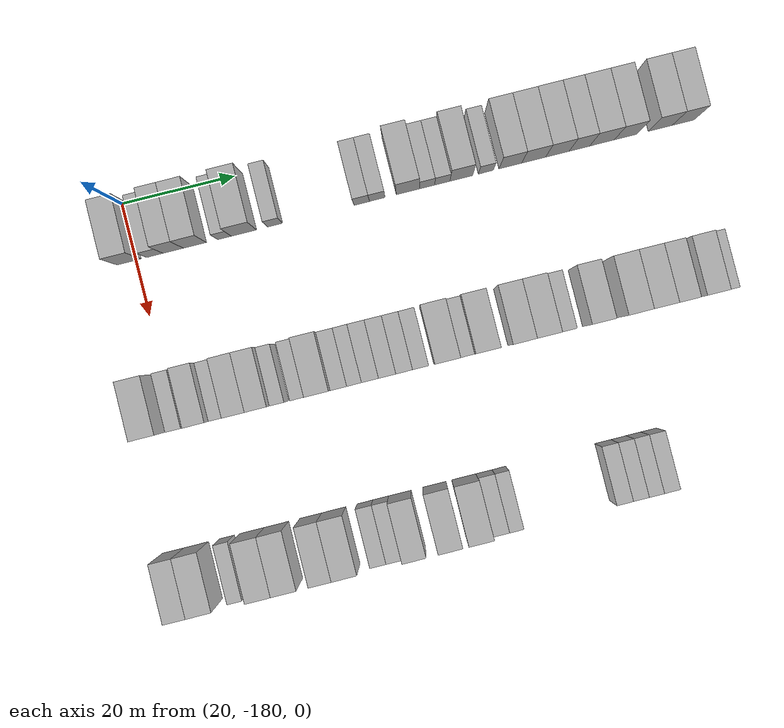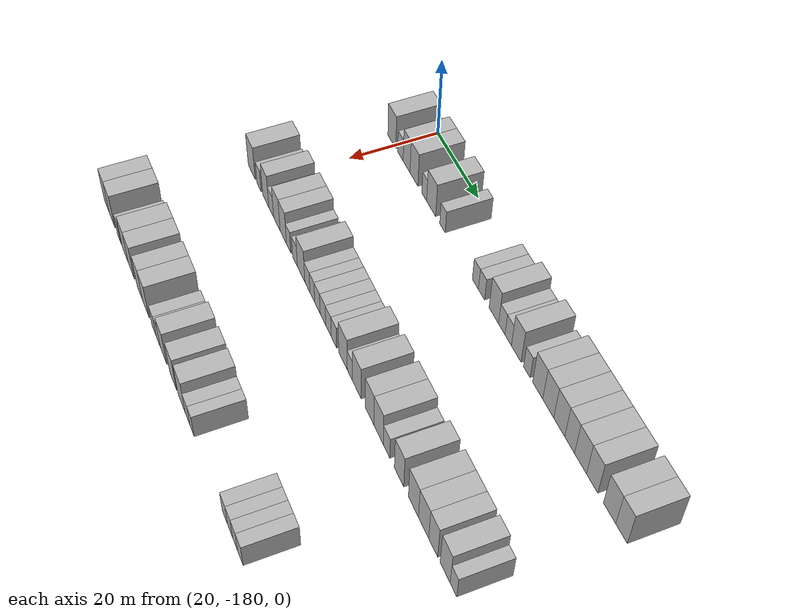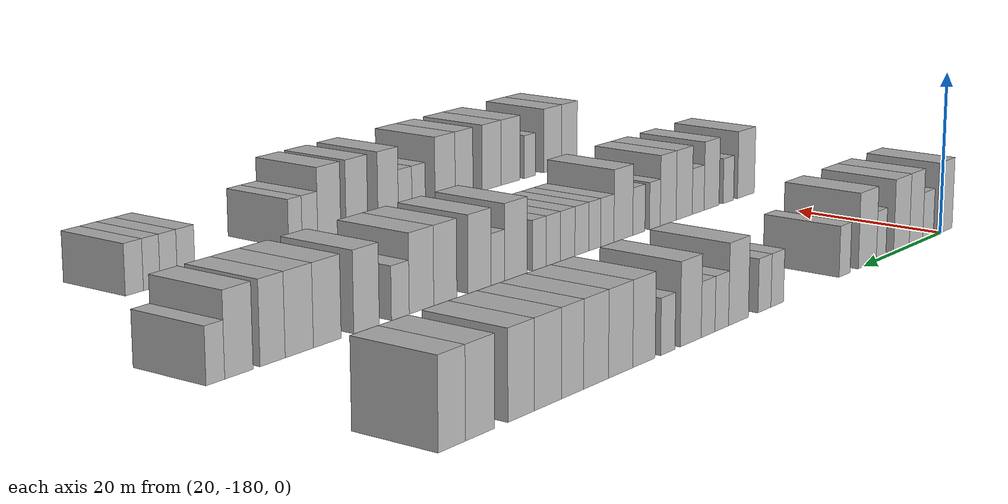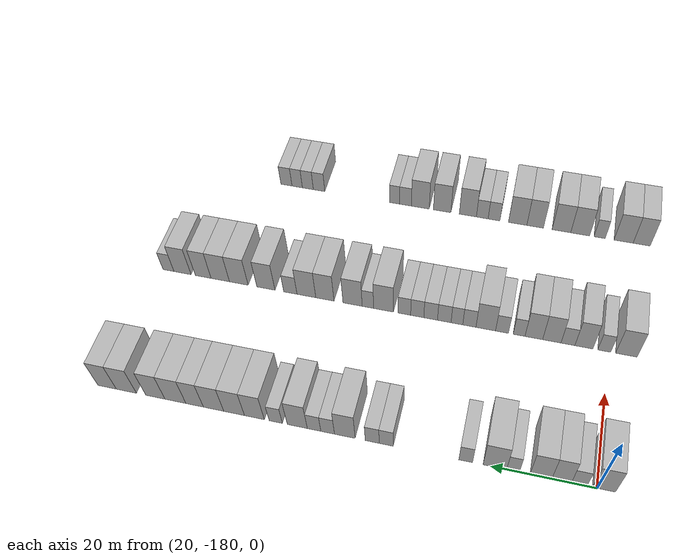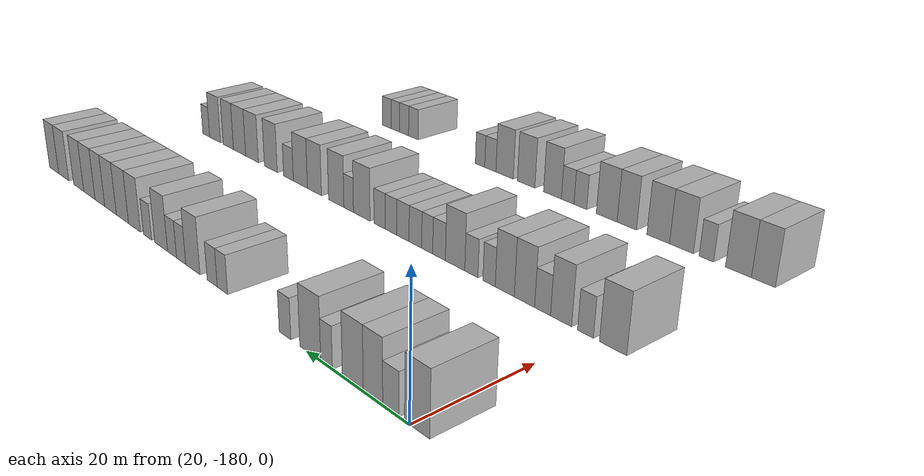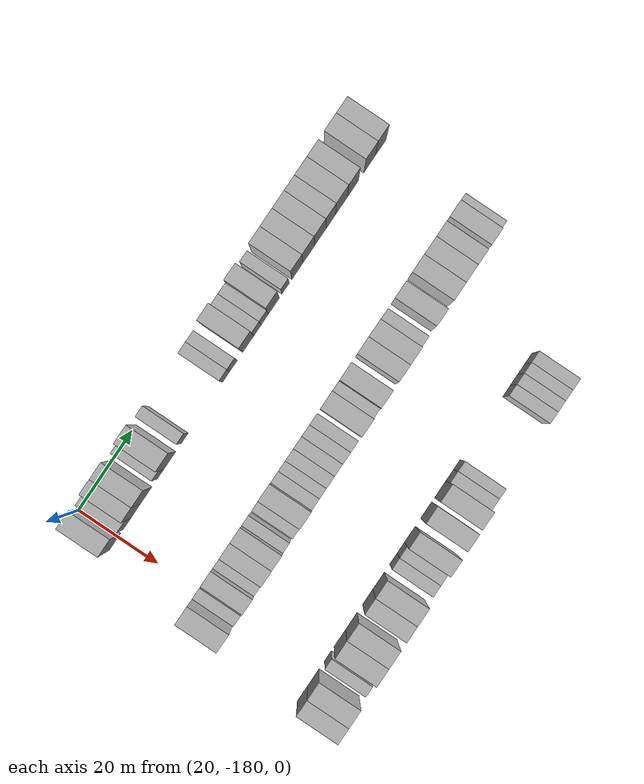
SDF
<sdf version="1.6">
 <world name="default">
  <model name="building_19">
   <static>1</static>
   <pose>25.0000 -181.2089 0 0.000000 0.000000 0.000000</pose>
   <link name="link">
    <pose>0 0 4.50 0 0 0</pose>
    <collision name="collision"><geometry><box><size>10.0000 4.2651 9.0000</size></box></geometry></collision>
    <visual name="visual">
     <cast_shadows>0</cast_shadows>
     <geometry><box><size>10.0000 4.2651 9.0000</size></box></geometry>
     <material>
      <script>
       <uri>model://HANNAS_wall/materials/scripts</uri>
       <uri>model://HANNAS_wall/materials/textures</uri>
       <name>vrc/HANNAS_wall</name>
      </script>
     </material>
    </visual>
   </link>
  </model>
  <model name="building_20">
   <static>1</static>
   <pose>25.0000 -176.6187 0 0.000000 0.000000 0.000000</pose>
   <link name="link">
    <pose>0 0 3.00 0 0 0</pose>
    <collision name="collision"><geometry><box><size>10.0000 2.9152 6.0000</size></box></geometry></collision>
    <visual name="visual">
     <cast_shadows>0</cast_shadows>
     <geometry><box><size>10.0000 2.9152 6.0000</size></box></geometry>
     <material>
      <script>
       <uri>model://HANNAS_wall/materials/scripts</uri>
       <uri>model://HANNAS_wall/materials/textures</uri>
       <name>vrc/HANNAS_wall</name>
      </script>
     </material>
    </visual>
   </link>
  </model>
  <model name="building_21">
   <static>1</static>
   <pose>25.0000 -173.3480 0 0.000000 0.000000 0.000000</pose>
   <link name="link">
    <pose>0 0 4.50 0 0 0</pose>
    <collision name="collision"><geometry><box><size>10.0000 3.6261 9.0000</size></box></geometry></collision>
    <visual name="visual">
     <cast_shadows>0</cast_shadows>
     <geometry><box><size>10.0000 3.6261 9.0000</size></box></geometry>
     <material>
      <script>
       <uri>model://HANNAS_wall/materials/scripts</uri>
       <uri>model://HANNAS_wall/materials/textures</uri>
       <name>vrc/HANNAS_wall</name>
      </script>
     </material>
    </visual>
   </link>
  </model>
  <model name="building_22">
   <static>1</static>
   <pose>25.0000 -169.4924 0 0.000000 0.000000 0.000000</pose>
   <link name="link">
    <pose>0 0 4.50 0 0 0</pose>
    <collision name="collision"><geometry><box><size>10.0000 4.0851 9.0000</size></box></geometry></collision>
    <visual name="visual">
     <cast_shadows>0</cast_shadows>
     <geometry><box><size>10.0000 4.0851 9.0000</size></box></geometry>
     <material>
      <script>
       <uri>model://HANNAS_wall/materials/scripts</uri>
       <uri>model://HANNAS_wall/materials/textures</uri>
       <name>vrc/HANNAS_wall</name>
      </script>
     </material>
    </visual>
   </link>
  </model>
  <model name="building_23">
   <static>1</static>
   <pose>25.0000 -164.2421 0 0.000000 0.000000 0.000000</pose>
   <link name="link">
    <pose>0 0 3.00 0 0 0</pose>
    <collision name="collision"><geometry><box><size>10.0000 2.4156 6.0000</size></box></geometry></collision>
    <visual name="visual">
     <cast_shadows>0</cast_shadows>
     <geometry><box><size>10.0000 2.4156 6.0000</size></box></geometry>
     <material>
      <script>
       <uri>model://HANNAS_wall/materials/scripts</uri>
       <uri>model://HANNAS_wall/materials/textures</uri>
       <name>vrc/HANNAS_wall</name>
      </script>
     </material>
    </visual>
   </link>
  </model>
  <model name="building_24">
   <static>1</static>
   <pose>25.0000 -160.7934 0 0.000000 0.000000 0.000000</pose>
   <link name="link">
    <pose>0 0 4.50 0 0 0</pose>
    <collision name="collision"><geometry><box><size>10.0000 4.4818 9.0000</size></box></geometry></collision>
    <visual name="visual">
     <cast_shadows>0</cast_shadows>
     <geometry><box><size>10.0000 4.4818 9.0000</size></box></geometry>
     <material>
      <script>
       <uri>model://HANNAS_wall/materials/scripts</uri>
       <uri>model://HANNAS_wall/materials/textures</uri>
       <name>vrc/HANNAS_wall</name>
      </script>
     </material>
    </visual>
   </link>
  </model>
  <model name="building_25">
   <static>1</static>
   <pose>25.0000 -155.2299 0 0.000000 0.000000 0.000000</pose>
   <link name="link">
    <pose>0 0 3.00 0 0 0</pose>
    <collision name="collision"><geometry><box><size>10.0000 2.6451 6.0000</size></box></geometry></collision>
    <visual name="visual">
     <cast_shadows>0</cast_shadows>
     <geometry><box><size>10.0000 2.6451 6.0000</size></box></geometry>
     <material>
      <script>
       <uri>model://HANNAS_wall/materials/scripts</uri>
       <uri>model://HANNAS_wall/materials/textures</uri>
       <name>vrc/HANNAS_wall</name>
      </script>
     </material>
    </visual>
   </link>
  </model>
  <model name="building_26">
   <static>1</static>
   <pose>25.0000 -139.7880 0 0.000000 0.000000 0.000000</pose>
   <link name="link">
    <pose>0 0 3.00 0 0 0</pose>
    <collision name="collision"><geometry><box><size>10.0000 2.7462 6.0000</size></box></geometry></collision>
    <visual name="visual">
     <cast_shadows>0</cast_shadows>
     <geometry><box><size>10.0000 2.7462 6.0000</size></box></geometry>
     <material>
      <script>
       <uri>model://HANNAS_wall/materials/scripts</uri>
       <uri>model://HANNAS_wall/materials/textures</uri>
       <name>vrc/HANNAS_wall</name>
      </script>
     </material>
    </visual>
   </link>
  </model>
  <model name="building_27">
   <static>1</static>
   <pose>25.0000 -137.0259 0 0.000000 0.000000 0.000000</pose>
   <link name="link">
    <pose>0 0 3.00 0 0 0</pose>
    <collision name="collision"><geometry><box><size>10.0000 2.7780 6.0000</size></box></geometry></collision>
    <visual name="visual">
     <cast_shadows>0</cast_shadows>
     <geometry><box><size>10.0000 2.7780 6.0000</size></box></geometry>
     <material>
      <script>
       <uri>model://HANNAS_wall/materials/scripts</uri>
       <uri>model://HANNAS_wall/materials/textures</uri>
       <name>vrc/HANNAS_wall</name>
      </script>
     </material>
    </visual>
   </link>
  </model>
  <model name="building_28">
   <static>1</static>
   <pose>25.0000 -131.5813 0 0.000000 0.000000 0.000000</pose>
   <link name="link">
    <pose>0 0 4.50 0 0 0</pose>
    <collision name="collision"><geometry><box><size>10.0000 4.1113 9.0000</size></box></geometry></collision>
    <visual name="visual">
     <cast_shadows>0</cast_shadows>
     <geometry><box><size>10.0000 4.1113 9.0000</size></box></geometry>
     <material>
      <script>
       <uri>model://HANNAS_wall/materials/scripts</uri>
       <uri>model://HANNAS_wall/materials/textures</uri>
       <name>vrc/HANNAS_wall</name>
      </script>
     </material>
    </visual>
   </link>
  </model>
  <model name="building_29">
   <static>1</static>
   <pose>25.0000 -128.1571 0 0.000000 0.000000 0.000000</pose>
   <link name="link">
    <pose>0 0 3.00 0 0 0</pose>
    <collision name="collision"><geometry><box><size>10.0000 2.7370 6.0000</size></box></geometry></collision>
    <visual name="visual">
     <cast_shadows>0</cast_shadows>
     <geometry><box><size>10.0000 2.7370 6.0000</size></box></geometry>
     <material>
      <script>
       <uri>model://HANNAS_wall/materials/scripts</uri>
       <uri>model://HANNAS_wall/materials/textures</uri>
       <name>vrc/HANNAS_wall</name>
      </script>
     </material>
    </visual>
   </link>
  </model>
  <model name="building_30">
   <static>1</static>
   <pose>25.0000 -125.4257 0 0.000000 0.000000 0.000000</pose>
   <link name="link">
    <pose>0 0 3.00 0 0 0</pose>
    <collision name="collision"><geometry><box><size>10.0000 2.7259 6.0000</size></box></geometry></collision>
    <visual name="visual">
     <cast_shadows>0</cast_shadows>
     <geometry><box><size>10.0000 2.7259 6.0000</size></box></geometry>
     <material>
      <script>
       <uri>model://HANNAS_wall/materials/scripts</uri>
       <uri>model://HANNAS_wall/materials/textures</uri>
       <name>vrc/HANNAS_wall</name>
      </script>
     </material>
    </visual>
   </link>
  </model>
  <model name="building_31">
   <static>1</static>
   <pose>25.0000 -122.0370 0 0.000000 0.000000 0.000000</pose>
   <link name="link">
    <pose>0 0 4.50 0 0 0</pose>
    <collision name="collision"><geometry><box><size>10.0000 4.0514 9.0000</size></box></geometry></collision>
    <visual name="visual">
     <cast_shadows>0</cast_shadows>
     <geometry><box><size>10.0000 4.0514 9.0000</size></box></geometry>
     <material>
      <script>
       <uri>model://HANNAS_wall/materials/scripts</uri>
       <uri>model://HANNAS_wall/materials/textures</uri>
       <name>vrc/HANNAS_wall</name>
      </script>
     </material>
    </visual>
   </link>
  </model>
  <model name="building_32">
   <static>1</static>
   <pose>25.0000 -117.6676 0 0.000000 0.000000 0.000000</pose>
   <link name="link">
    <pose>0 0 3.00 0 0 0</pose>
    <collision name="collision"><geometry><box><size>10.0000 2.6874 6.0000</size></box></geometry></collision>
    <visual name="visual">
     <cast_shadows>0</cast_shadows>
     <geometry><box><size>10.0000 2.6874 6.0000</size></box></geometry>
     <material>
      <script>
       <uri>model://HANNAS_wall/materials/scripts</uri>
       <uri>model://HANNAS_wall/materials/textures</uri>
       <name>vrc/HANNAS_wall</name>
      </script>
     </material>
    </visual>
   </link>
  </model>
  <model name="building_33">
   <static>1</static>
   <pose>25.0000 -113.2914 0 0.000000 0.000000 0.000000</pose>
   <link name="link">
    <pose>0 0 4.50 0 0 0</pose>
    <collision name="collision"><geometry><box><size>10.0000 4.0650 9.0000</size></box></geometry></collision>
    <visual name="visual">
     <cast_shadows>0</cast_shadows>
     <geometry><box><size>10.0000 4.0650 9.0000</size></box></geometry>
     <material>
      <script>
       <uri>model://HANNAS_wall/materials/scripts</uri>
       <uri>model://HANNAS_wall/materials/textures</uri>
       <name>vrc/HANNAS_wall</name>
      </script>
     </material>
    </visual>
   </link>
  </model>
  <model name="building_34">
   <static>1</static>
   <pose>25.0000 -109.1173 0 0.000000 0.000000 0.000000</pose>
   <link name="link">
    <pose>0 0 4.50 0 0 0</pose>
    <collision name="collision"><geometry><box><size>10.0000 4.2831 9.0000</size></box></geometry></collision>
    <visual name="visual">
     <cast_shadows>0</cast_shadows>
     <geometry><box><size>10.0000 4.2831 9.0000</size></box></geometry>
     <material>
      <script>
       <uri>model://HANNAS_wall/materials/scripts</uri>
       <uri>model://HANNAS_wall/materials/textures</uri>
       <name>vrc/HANNAS_wall</name>
      </script>
     </material>
    </visual>
   </link>
  </model>
  <model name="building_35">
   <static>1</static>
   <pose>25.0000 -104.8553 0 0.000000 0.000000 0.000000</pose>
   <link name="link">
    <pose>0 0 4.50 0 0 0</pose>
    <collision name="collision"><geometry><box><size>10.0000 4.2411 9.0000</size></box></geometry></collision>
    <visual name="visual">
     <cast_shadows>0</cast_shadows>
     <geometry><box><size>10.0000 4.2411 9.0000</size></box></geometry>
     <material>
      <script>
       <uri>model://HANNAS_wall/materials/scripts</uri>
       <uri>model://HANNAS_wall/materials/textures</uri>
       <name>vrc/HANNAS_wall</name>
      </script>
     </material>
    </visual>
   </link>
  </model>
  <model name="building_36">
   <static>1</static>
   <pose>25.0000 -100.9008 0 0.000000 0.000000 0.000000</pose>
   <link name="link">
    <pose>0 0 4.50 0 0 0</pose>
    <collision name="collision"><geometry><box><size>10.0000 3.6677 9.0000</size></box></geometry></collision>
    <visual name="visual">
     <cast_shadows>0</cast_shadows>
     <geometry><box><size>10.0000 3.6677 9.0000</size></box></geometry>
     <material>
      <script>
       <uri>model://HANNAS_wall/materials/scripts</uri>
       <uri>model://HANNAS_wall/materials/textures</uri>
       <name>vrc/HANNAS_wall</name>
      </script>
     </material>
    </visual>
   </link>
  </model>
  <model name="building_37">
   <static>1</static>
   <pose>25.0000 -96.8652 0 0.000000 0.000000 0.000000</pose>
   <link name="link">
    <pose>0 0 4.50 0 0 0</pose>
    <collision name="collision"><geometry><box><size>10.0000 4.4035 9.0000</size></box></geometry></collision>
    <visual name="visual">
     <cast_shadows>0</cast_shadows>
     <geometry><box><size>10.0000 4.4035 9.0000</size></box></geometry>
     <material>
      <script>
       <uri>model://HANNAS_wall/materials/scripts</uri>
       <uri>model://HANNAS_wall/materials/textures</uri>
       <name>vrc/HANNAS_wall</name>
      </script>
     </material>
    </visual>
   </link>
  </model>
  <model name="building_38">
   <static>1</static>
   <pose>25.0000 -92.6300 0 0.000000 0.000000 0.000000</pose>
   <link name="link">
    <pose>0 0 4.50 0 0 0</pose>
    <collision name="collision"><geometry><box><size>10.0000 4.0669 9.0000</size></box></geometry></collision>
    <visual name="visual">
     <cast_shadows>0</cast_shadows>
     <geometry><box><size>10.0000 4.0669 9.0000</size></box></geometry>
     <material>
      <script>
       <uri>model://HANNAS_wall/materials/scripts</uri>
       <uri>model://HANNAS_wall/materials/textures</uri>
       <name>vrc/HANNAS_wall</name>
      </script>
     </material>
    </visual>
   </link>
  </model>
  <model name="building_39">
   <static>1</static>
   <pose>25.0000 -86.4419 0 0.000000 0.000000 0.000000</pose>
   <link name="link">
    <pose>0 0 4.50 0 0 0</pose>
    <collision name="collision"><geometry><box><size>10.0000 4.3093 9.0000</size></box></geometry></collision>
    <visual name="visual">
     <cast_shadows>0</cast_shadows>
     <geometry><box><size>10.0000 4.3093 9.0000</size></box></geometry>
     <material>
      <script>
       <uri>model://HANNAS_wall/materials/scripts</uri>
       <uri>model://HANNAS_wall/materials/textures</uri>
       <name>vrc/HANNAS_wall</name>
      </script>
     </material>
    </visual>
   </link>
  </model>
  <model name="building_40">
   <static>1</static>
   <pose>25.0000 -82.3162 0 0.000000 0.000000 0.000000</pose>
   <link name="link">
    <pose>0 0 4.50 0 0 0</pose>
    <collision name="collision"><geometry><box><size>10.0000 3.9421 9.0000</size></box></geometry></collision>
    <visual name="visual">
     <cast_shadows>0</cast_shadows>
     <geometry><box><size>10.0000 3.9421 9.0000</size></box></geometry>
     <material>
      <script>
       <uri>model://HANNAS_wall/materials/scripts</uri>
       <uri>model://HANNAS_wall/materials/textures</uri>
       <name>vrc/HANNAS_wall</name>
      </script>
     </material>
    </visual>
   </link>
  </model>
  <model name="building_151">
   <static>1</static>
   <pose>55.0000 -183.7176 0 0.000000 0.000000 0.000000</pose>
   <link name="link">
    <pose>0 0 4.50 0 0 0</pose>
    <collision name="collision"><geometry><box><size>10.0000 4.3691 9.0000</size></box></geometry></collision>
    <visual name="visual">
     <cast_shadows>0</cast_shadows>
     <geometry><box><size>10.0000 4.3691 9.0000</size></box></geometry>
     <material>
      <script>
       <uri>model://HANNAS_wall/materials/scripts</uri>
       <uri>model://HANNAS_wall/materials/textures</uri>
       <name>vrc/HANNAS_wall</name>
      </script>
     </material>
    </visual>
   </link>
  </model>
  <model name="building_152">
   <static>1</static>
   <pose>55.0000 -179.2013 0 0.000000 0.000000 0.000000</pose>
   <link name="link">
    <pose>0 0 3.00 0 0 0</pose>
    <collision name="collision"><geometry><box><size>10.0000 2.6634 6.0000</size></box></geometry></collision>
    <visual name="visual">
     <cast_shadows>0</cast_shadows>
     <geometry><box><size>10.0000 2.6634 6.0000</size></box></geometry>
     <material>
      <script>
       <uri>model://HANNAS_wall/materials/scripts</uri>
       <uri>model://HANNAS_wall/materials/textures</uri>
       <name>vrc/HANNAS_wall</name>
      </script>
     </material>
    </visual>
   </link>
  </model>
  <model name="building_153">
   <static>1</static>
   <pose>55.0000 -175.0153 0 0.000000 0.000000 0.000000</pose>
   <link name="link">
    <pose>0 0 4.50 0 0 0</pose>
    <collision name="collision"><geometry><box><size>10.0000 3.7085 9.0000</size></box></geometry></collision>
    <visual name="visual">
     <cast_shadows>0</cast_shadows>
     <geometry><box><size>10.0000 3.7085 9.0000</size></box></geometry>
     <material>
      <script>
       <uri>model://HANNAS_wall/materials/scripts</uri>
       <uri>model://HANNAS_wall/materials/textures</uri>
       <name>vrc/HANNAS_wall</name>
      </script>
     </material>
    </visual>
   </link>
  </model>
  <model name="building_154">
   <static>1</static>
   <pose>55.0000 -171.7183 0 0.000000 0.000000 0.000000</pose>
   <link name="link">
    <pose>0 0 3.00 0 0 0</pose>
    <collision name="collision"><geometry><box><size>10.0000 2.8856 6.0000</size></box></geometry></collision>
    <visual name="visual">
     <cast_shadows>0</cast_shadows>
     <geometry><box><size>10.0000 2.8856 6.0000</size></box></geometry>
     <material>
      <script>
       <uri>model://HANNAS_wall/materials/scripts</uri>
       <uri>model://HANNAS_wall/materials/textures</uri>
       <name>vrc/HANNAS_wall</name>
      </script>
     </material>
    </visual>
   </link>
  </model>
  <model name="building_155">
   <static>1</static>
   <pose>55.0000 -168.3627 0 0.000000 0.000000 0.000000</pose>
   <link name="link">
    <pose>0 0 4.50 0 0 0</pose>
    <collision name="collision"><geometry><box><size>10.0000 3.8256 9.0000</size></box></geometry></collision>
    <visual name="visual">
     <cast_shadows>0</cast_shadows>
     <geometry><box><size>10.0000 3.8256 9.0000</size></box></geometry>
     <material>
      <script>
       <uri>model://HANNAS_wall/materials/scripts</uri>
       <uri>model://HANNAS_wall/materials/textures</uri>
       <name>vrc/HANNAS_wall</name>
      </script>
     </material>
    </visual>
   </link>
  </model>
  <model name="building_156">
   <static>1</static>
   <pose>55.0000 -164.5997 0 0.000000 0.000000 0.000000</pose>
   <link name="link">
    <pose>0 0 4.50 0 0 0</pose>
    <collision name="collision"><geometry><box><size>10.0000 3.7004 9.0000</size></box></geometry></collision>
    <visual name="visual">
     <cast_shadows>0</cast_shadows>
     <geometry><box><size>10.0000 3.7004 9.0000</size></box></geometry>
     <material>
      <script>
       <uri>model://HANNAS_wall/materials/scripts</uri>
       <uri>model://HANNAS_wall/materials/textures</uri>
       <name>vrc/HANNAS_wall</name>
      </script>
     </material>
    </visual>
   </link>
  </model>
  <model name="building_157">
   <static>1</static>
   <pose>55.0000 -161.5065 0 0.000000 0.000000 0.000000</pose>
   <link name="link">
    <pose>0 0 3.00 0 0 0</pose>
    <collision name="collision"><geometry><box><size>10.0000 2.4860 6.0000</size></box></geometry></collision>
    <visual name="visual">
     <cast_shadows>0</cast_shadows>
     <geometry><box><size>10.0000 2.4860 6.0000</size></box></geometry>
     <material>
      <script>
       <uri>model://HANNAS_wall/materials/scripts</uri>
       <uri>model://HANNAS_wall/materials/textures</uri>
       <name>vrc/HANNAS_wall</name>
      </script>
     </material>
    </visual>
   </link>
  </model>
  <model name="building_158">
   <static>1</static>
   <pose>55.0000 -157.8949 0 0.000000 0.000000 0.000000</pose>
   <link name="link">
    <pose>0 0 3.00 0 0 0</pose>
    <collision name="collision"><geometry><box><size>10.0000 2.7372 6.0000</size></box></geometry></collision>
    <visual name="visual">
     <cast_shadows>0</cast_shadows>
     <geometry><box><size>10.0000 2.7372 6.0000</size></box></geometry>
     <material>
      <script>
       <uri>model://HANNAS_wall/materials/scripts</uri>
       <uri>model://HANNAS_wall/materials/textures</uri>
       <name>vrc/HANNAS_wall</name>
      </script>
     </material>
    </visual>
   </link>
  </model>
  <model name="building_159">
   <static>1</static>
   <pose>55.0000 -154.4484 0 0.000000 0.000000 0.000000</pose>
   <link name="link">
    <pose>0 0 4.50 0 0 0</pose>
    <collision name="collision"><geometry><box><size>10.0000 4.1558 9.0000</size></box></geometry></collision>
    <visual name="visual">
     <cast_shadows>0</cast_shadows>
     <geometry><box><size>10.0000 4.1558 9.0000</size></box></geometry>
     <material>
      <script>
       <uri>model://HANNAS_wall/materials/scripts</uri>
       <uri>model://HANNAS_wall/materials/textures</uri>
       <name>vrc/HANNAS_wall</name>
      </script>
     </material>
    </visual>
   </link>
  </model>
  <model name="building_160">
   <static>1</static>
   <pose>55.0000 -150.9578 0 0.000000 0.000000 0.000000</pose>
   <link name="link">
    <pose>0 0 3.00 0 0 0</pose>
    <collision name="collision"><geometry><box><size>10.0000 2.8255 6.0000</size></box></geometry></collision>
    <visual name="visual">
     <cast_shadows>0</cast_shadows>
     <geometry><box><size>10.0000 2.8255 6.0000</size></box></geometry>
     <material>
      <script>
       <uri>model://HANNAS_wall/materials/scripts</uri>
       <uri>model://HANNAS_wall/materials/textures</uri>
       <name>vrc/HANNAS_wall</name>
      </script>
     </material>
    </visual>
   </link>
  </model>
  <model name="building_161">
   <static>1</static>
   <pose>55.0000 -148.2878 0 0.000000 0.000000 0.000000</pose>
   <link name="link">
    <pose>0 0 3.00 0 0 0</pose>
    <collision name="collision"><geometry><box><size>10.0000 2.5145 6.0000</size></box></geometry></collision>
    <visual name="visual">
     <cast_shadows>0</cast_shadows>
     <geometry><box><size>10.0000 2.5145 6.0000</size></box></geometry>
     <material>
      <script>
       <uri>model://HANNAS_wall/materials/scripts</uri>
       <uri>model://HANNAS_wall/materials/textures</uri>
       <name>vrc/HANNAS_wall</name>
      </script>
     </material>
    </visual>
   </link>
  </model>
  <model name="building_162">
   <static>1</static>
   <pose>55.0000 -145.5676 0 0.000000 0.000000 0.000000</pose>
   <link name="link">
    <pose>0 0 3.00 0 0 0</pose>
    <collision name="collision"><geometry><box><size>10.0000 2.9258 6.0000</size></box></geometry></collision>
    <visual name="visual">
     <cast_shadows>0</cast_shadows>
     <geometry><box><size>10.0000 2.9258 6.0000</size></box></geometry>
     <material>
      <script>
       <uri>model://HANNAS_wall/materials/scripts</uri>
       <uri>model://HANNAS_wall/materials/textures</uri>
       <name>vrc/HANNAS_wall</name>
      </script>
     </material>
    </visual>
   </link>
  </model>
  <model name="building_163">
   <static>1</static>
   <pose>55.0000 -142.6265 0 0.000000 0.000000 0.000000</pose>
   <link name="link">
    <pose>0 0 3.00 0 0 0</pose>
    <collision name="collision"><geometry><box><size>10.0000 2.9563 6.0000</size></box></geometry></collision>
    <visual name="visual">
     <cast_shadows>0</cast_shadows>
     <geometry><box><size>10.0000 2.9563 6.0000</size></box></geometry>
     <material>
      <script>
       <uri>model://HANNAS_wall/materials/scripts</uri>
       <uri>model://HANNAS_wall/materials/textures</uri>
       <name>vrc/HANNAS_wall</name>
      </script>
     </material>
    </visual>
   </link>
  </model>
  <model name="building_164">
   <static>1</static>
   <pose>55.0000 -139.7189 0 0.000000 0.000000 0.000000</pose>
   <link name="link">
    <pose>0 0 3.00 0 0 0</pose>
    <collision name="collision"><geometry><box><size>10.0000 2.8590 6.0000</size></box></geometry></collision>
    <visual name="visual">
     <cast_shadows>0</cast_shadows>
     <geometry><box><size>10.0000 2.8590 6.0000</size></box></geometry>
     <material>
      <script>
       <uri>model://HANNAS_wall/materials/scripts</uri>
       <uri>model://HANNAS_wall/materials/textures</uri>
       <name>vrc/HANNAS_wall</name>
      </script>
     </material>
    </visual>
   </link>
  </model>
  <model name="building_165">
   <static>1</static>
   <pose>55.0000 -136.9082 0 0.000000 0.000000 0.000000</pose>
   <link name="link">
    <pose>0 0 3.00 0 0 0</pose>
    <collision name="collision"><geometry><box><size>10.0000 2.7624 6.0000</size></box></geometry></collision>
    <visual name="visual">
     <cast_shadows>0</cast_shadows>
     <geometry><box><size>10.0000 2.7624 6.0000</size></box></geometry>
     <material>
      <script>
       <uri>model://HANNAS_wall/materials/scripts</uri>
       <uri>model://HANNAS_wall/materials/textures</uri>
       <name>vrc/HANNAS_wall</name>
      </script>
     </material>
    </visual>
   </link>
  </model>
  <model name="building_166">
   <static>1</static>
   <pose>55.0000 -132.3588 0 0.000000 0.000000 0.000000</pose>
   <link name="link">
    <pose>0 0 4.50 0 0 0</pose>
    <collision name="collision"><geometry><box><size>10.0000 4.3364 9.0000</size></box></geometry></collision>
    <visual name="visual">
     <cast_shadows>0</cast_shadows>
     <geometry><box><size>10.0000 4.3364 9.0000</size></box></geometry>
     <material>
      <script>
       <uri>model://HANNAS_wall/materials/scripts</uri>
       <uri>model://HANNAS_wall/materials/textures</uri>
       <name>vrc/HANNAS_wall</name>
      </script>
     </material>
    </visual>
   </link>
  </model>
  <model name="building_167">
   <static>1</static>
   <pose>55.0000 -128.9199 0 0.000000 0.000000 0.000000</pose>
   <link name="link">
    <pose>0 0 3.00 0 0 0</pose>
    <collision name="collision"><geometry><box><size>10.0000 2.5414 6.0000</size></box></geometry></collision>
    <visual name="visual">
     <cast_shadows>0</cast_shadows>
     <geometry><box><size>10.0000 2.5414 6.0000</size></box></geometry>
     <material>
      <script>
       <uri>model://HANNAS_wall/materials/scripts</uri>
       <uri>model://HANNAS_wall/materials/textures</uri>
       <name>vrc/HANNAS_wall</name>
      </script>
     </material>
    </visual>
   </link>
  </model>
  <model name="building_168">
   <static>1</static>
   <pose>55.0000 -125.5203 0 0.000000 0.000000 0.000000</pose>
   <link name="link">
    <pose>0 0 4.50 0 0 0</pose>
    <collision name="collision"><geometry><box><size>10.0000 4.2578 9.0000</size></box></geometry></collision>
    <visual name="visual">
     <cast_shadows>0</cast_shadows>
     <geometry><box><size>10.0000 4.2578 9.0000</size></box></geometry>
     <material>
      <script>
       <uri>model://HANNAS_wall/materials/scripts</uri>
       <uri>model://HANNAS_wall/materials/textures</uri>
       <name>vrc/HANNAS_wall</name>
      </script>
     </material>
    </visual>
   </link>
  </model>
  <model name="building_169">
   <static>1</static>
   <pose>55.0000 -119.3529 0 0.000000 0.000000 0.000000</pose>
   <link name="link">
    <pose>0 0 4.50 0 0 0</pose>
    <collision name="collision"><geometry><box><size>10.0000 4.0770 9.0000</size></box></geometry></collision>
    <visual name="visual">
     <cast_shadows>0</cast_shadows>
     <geometry><box><size>10.0000 4.0770 9.0000</size></box></geometry>
     <material>
      <script>
       <uri>model://HANNAS_wall/materials/scripts</uri>
       <uri>model://HANNAS_wall/materials/textures</uri>
       <name>vrc/HANNAS_wall</name>
      </script>
     </material>
    </visual>
   </link>
  </model>
  <model name="building_170">
   <static>1</static>
   <pose>55.0000 -115.2009 0 0.000000 0.000000 0.000000</pose>
   <link name="link">
    <pose>0 0 4.50 0 0 0</pose>
    <collision name="collision"><geometry><box><size>10.0000 4.2271 9.0000</size></box></geometry></collision>
    <visual name="visual">
     <cast_shadows>0</cast_shadows>
     <geometry><box><size>10.0000 4.2271 9.0000</size></box></geometry>
     <material>
      <script>
       <uri>model://HANNAS_wall/materials/scripts</uri>
       <uri>model://HANNAS_wall/materials/textures</uri>
       <name>vrc/HANNAS_wall</name>
      </script>
     </material>
    </visual>
   </link>
  </model>
  <model name="building_171">
   <static>1</static>
   <pose>55.0000 -111.5889 0 0.000000 0.000000 0.000000</pose>
   <link name="link">
    <pose>0 0 3.00 0 0 0</pose>
    <collision name="collision"><geometry><box><size>10.0000 2.9969 6.0000</size></box></geometry></collision>
    <visual name="visual">
     <cast_shadows>0</cast_shadows>
     <geometry><box><size>10.0000 2.9969 6.0000</size></box></geometry>
     <material>
      <script>
       <uri>model://HANNAS_wall/materials/scripts</uri>
       <uri>model://HANNAS_wall/materials/textures</uri>
       <name>vrc/HANNAS_wall</name>
      </script>
     </material>
    </visual>
   </link>
  </model>
  <model name="building_172">
   <static>1</static>
   <pose>55.0000 -106.0221 0 0.000000 0.000000 0.000000</pose>
   <link name="link">
    <pose>0 0 4.50 0 0 0</pose>
    <collision name="collision"><geometry><box><size>10.0000 4.1366 9.0000</size></box></geometry></collision>
    <visual name="visual">
     <cast_shadows>0</cast_shadows>
     <geometry><box><size>10.0000 4.1366 9.0000</size></box></geometry>
     <material>
      <script>
       <uri>model://HANNAS_wall/materials/scripts</uri>
       <uri>model://HANNAS_wall/materials/textures</uri>
       <name>vrc/HANNAS_wall</name>
      </script>
     </material>
    </visual>
   </link>
  </model>
  <model name="building_173">
   <static>1</static>
   <pose>55.0000 -99.8083 0 0.000000 0.000000 0.000000</pose>
   <link name="link">
    <pose>0 0 4.50 0 0 0</pose>
    <collision name="collision"><geometry><box><size>10.0000 4.2912 9.0000</size></box></geometry></collision>
    <visual name="visual">
     <cast_shadows>0</cast_shadows>
     <geometry><box><size>10.0000 4.2912 9.0000</size></box></geometry>
     <material>
      <script>
       <uri>model://HANNAS_wall/materials/scripts</uri>
       <uri>model://HANNAS_wall/materials/textures</uri>
       <name>vrc/HANNAS_wall</name>
      </script>
     </material>
    </visual>
   </link>
  </model>
  <model name="building_174">
   <static>1</static>
   <pose>55.0000 -95.5378 0 0.000000 0.000000 0.000000</pose>
   <link name="link">
    <pose>0 0 4.50 0 0 0</pose>
    <collision name="collision"><geometry><box><size>10.0000 4.2497 9.0000</size></box></geometry></collision>
    <visual name="visual">
     <cast_shadows>0</cast_shadows>
     <geometry><box><size>10.0000 4.2497 9.0000</size></box></geometry>
     <material>
      <script>
       <uri>model://HANNAS_wall/materials/scripts</uri>
       <uri>model://HANNAS_wall/materials/textures</uri>
       <name>vrc/HANNAS_wall</name>
      </script>
     </material>
    </visual>
   </link>
  </model>
  <model name="building_175">
   <static>1</static>
   <pose>55.0000 -91.5769 0 0.000000 0.000000 0.000000</pose>
   <link name="link">
    <pose>0 0 4.50 0 0 0</pose>
    <collision name="collision"><geometry><box><size>10.0000 3.6722 9.0000</size></box></geometry></collision>
    <visual name="visual">
     <cast_shadows>0</cast_shadows>
     <geometry><box><size>10.0000 3.6722 9.0000</size></box></geometry>
     <material>
      <script>
       <uri>model://HANNAS_wall/materials/scripts</uri>
       <uri>model://HANNAS_wall/materials/textures</uri>
       <name>vrc/HANNAS_wall</name>
      </script>
     </material>
    </visual>
   </link>
  </model>
  <model name="building_176">
   <static>1</static>
   <pose>55.0000 -86.7364 0 0.000000 0.000000 0.000000</pose>
   <link name="link">
    <pose>0 0 4.50 0 0 0</pose>
    <collision name="collision"><geometry><box><size>10.0000 4.0087 9.0000</size></box></geometry></collision>
    <visual name="visual">
     <cast_shadows>0</cast_shadows>
     <geometry><box><size>10.0000 4.0087 9.0000</size></box></geometry>
     <material>
      <script>
       <uri>model://HANNAS_wall/materials/scripts</uri>
       <uri>model://HANNAS_wall/materials/textures</uri>
       <name>vrc/HANNAS_wall</name>
      </script>
     </material>
    </visual>
   </link>
  </model>
  <model name="building_177">
   <static>1</static>
   <pose>55.0000 -83.4441 0 0.000000 0.000000 0.000000</pose>
   <link name="link">
    <pose>0 0 3.00 0 0 0</pose>
    <collision name="collision"><geometry><box><size>10.0000 2.5759 6.0000</size></box></geometry></collision>
    <visual name="visual">
     <cast_shadows>0</cast_shadows>
     <geometry><box><size>10.0000 2.5759 6.0000</size></box></geometry>
     <material>
      <script>
       <uri>model://HANNAS_wall/materials/scripts</uri>
       <uri>model://HANNAS_wall/materials/textures</uri>
       <name>vrc/HANNAS_wall</name>
      </script>
     </material>
    </visual>
   </link>
  </model>
  <model name="building_298">
   <static>1</static>
   <pose>85.0000 -185.5829 0 0.000000 0.000000 0.000000</pose>
   <link name="link">
    <pose>0 0 4.50 0 0 0</pose>
    <collision name="collision"><geometry><box><size>10.0000 3.8124 9.0000</size></box></geometry></collision>
    <visual name="visual">
     <cast_shadows>0</cast_shadows>
     <geometry><box><size>10.0000 3.8124 9.0000</size></box></geometry>
     <material>
      <script>
       <uri>model://HANNAS_wall/materials/scripts</uri>
       <uri>model://HANNAS_wall/materials/textures</uri>
       <name>vrc/HANNAS_wall</name>
      </script>
     </material>
    </visual>
   </link>
  </model>
  <model name="building_299">
   <static>1</static>
   <pose>85.0000 -181.5311 0 0.000000 0.000000 0.000000</pose>
   <link name="link">
    <pose>0 0 4.50 0 0 0</pose>
    <collision name="collision"><geometry><box><size>10.0000 4.2913 9.0000</size></box></geometry></collision>
    <visual name="visual">
     <cast_shadows>0</cast_shadows>
     <geometry><box><size>10.0000 4.2913 9.0000</size></box></geometry>
     <material>
      <script>
       <uri>model://HANNAS_wall/materials/scripts</uri>
       <uri>model://HANNAS_wall/materials/textures</uri>
       <name>vrc/HANNAS_wall</name>
      </script>
     </material>
    </visual>
   </link>
  </model>
  <model name="building_300">
   <static>1</static>
   <pose>85.0000 -176.1159 0 0.000000 0.000000 0.000000</pose>
   <link name="link">
    <pose>0 0 3.00 0 0 0</pose>
    <collision name="collision"><geometry><box><size>10.0000 2.5390 6.0000</size></box></geometry></collision>
    <visual name="visual">
     <cast_shadows>0</cast_shadows>
     <geometry><box><size>10.0000 2.5390 6.0000</size></box></geometry>
     <material>
      <script>
       <uri>model://HANNAS_wall/materials/scripts</uri>
       <uri>model://HANNAS_wall/materials/textures</uri>
       <name>vrc/HANNAS_wall</name>
      </script>
     </material>
    </visual>
   </link>
  </model>
  <model name="building_301">
   <static>1</static>
   <pose>85.0000 -171.6855 0 0.000000 0.000000 0.000000</pose>
   <link name="link">
    <pose>0 0 4.50 0 0 0</pose>
    <collision name="collision"><geometry><box><size>10.0000 4.3218 9.0000</size></box></geometry></collision>
    <visual name="visual">
     <cast_shadows>0</cast_shadows>
     <geometry><box><size>10.0000 4.3218 9.0000</size></box></geometry>
     <material>
      <script>
       <uri>model://HANNAS_wall/materials/scripts</uri>
       <uri>model://HANNAS_wall/materials/textures</uri>
       <name>vrc/HANNAS_wall</name>
      </script>
     </material>
    </visual>
   </link>
  </model>
  <model name="building_302">
   <static>1</static>
   <pose>85.0000 -167.3929 0 0.000000 0.000000 0.000000</pose>
   <link name="link">
    <pose>0 0 4.50 0 0 0</pose>
    <collision name="collision"><geometry><box><size>10.0000 4.2636 9.0000</size></box></geometry></collision>
    <visual name="visual">
     <cast_shadows>0</cast_shadows>
     <geometry><box><size>10.0000 4.2636 9.0000</size></box></geometry>
     <material>
      <script>
       <uri>model://HANNAS_wall/materials/scripts</uri>
       <uri>model://HANNAS_wall/materials/textures</uri>
       <name>vrc/HANNAS_wall</name>
      </script>
     </material>
    </visual>
   </link>
  </model>
  <model name="building_303">
   <static>1</static>
   <pose>85.0000 -161.3423 0 0.000000 0.000000 0.000000</pose>
   <link name="link">
    <pose>0 0 4.50 0 0 0</pose>
    <collision name="collision"><geometry><box><size>10.0000 3.8376 9.0000</size></box></geometry></collision>
    <visual name="visual">
     <cast_shadows>0</cast_shadows>
     <geometry><box><size>10.0000 3.8376 9.0000</size></box></geometry>
     <material>
      <script>
       <uri>model://HANNAS_wall/materials/scripts</uri>
       <uri>model://HANNAS_wall/materials/textures</uri>
       <name>vrc/HANNAS_wall</name>
      </script>
     </material>
    </visual>
   </link>
  </model>
  <model name="building_304">
   <static>1</static>
   <pose>85.0000 -157.2894 0 0.000000 0.000000 0.000000</pose>
   <link name="link">
    <pose>0 0 4.50 0 0 0</pose>
    <collision name="collision"><geometry><box><size>10.0000 4.2681 9.0000</size></box></geometry></collision>
    <visual name="visual">
     <cast_shadows>0</cast_shadows>
     <geometry><box><size>10.0000 4.2681 9.0000</size></box></geometry>
     <material>
      <script>
       <uri>model://HANNAS_wall/materials/scripts</uri>
       <uri>model://HANNAS_wall/materials/textures</uri>
       <name>vrc/HANNAS_wall</name>
      </script>
     </material>
    </visual>
   </link>
  </model>
  <model name="building_305">
   <static>1</static>
   <pose>85.0000 -151.7749 0 0.000000 0.000000 0.000000</pose>
   <link name="link">
    <pose>0 0 3.00 0 0 0</pose>
    <collision name="collision"><geometry><box><size>10.0000 2.7610 6.0000</size></box></geometry></collision>
    <visual name="visual">
     <cast_shadows>0</cast_shadows>
     <geometry><box><size>10.0000 2.7610 6.0000</size></box></geometry>
     <material>
      <script>
       <uri>model://HANNAS_wall/materials/scripts</uri>
       <uri>model://HANNAS_wall/materials/textures</uri>
       <name>vrc/HANNAS_wall</name>
      </script>
     </material>
    </visual>
   </link>
  </model>
  <model name="building_306">
   <static>1</static>
   <pose>85.0000 -149.0160 0 0.000000 0.000000 0.000000</pose>
   <link name="link">
    <pose>0 0 3.00 0 0 0</pose>
    <collision name="collision"><geometry><box><size>10.0000 2.7569 6.0000</size></box></geometry></collision>
    <visual name="visual">
     <cast_shadows>0</cast_shadows>
     <geometry><box><size>10.0000 2.7569 6.0000</size></box></geometry>
     <material>
      <script>
       <uri>model://HANNAS_wall/materials/scripts</uri>
       <uri>model://HANNAS_wall/materials/textures</uri>
       <name>vrc/HANNAS_wall</name>
      </script>
     </material>
    </visual>
   </link>
  </model>
  <model name="building_307">
   <static>1</static>
   <pose>85.0000 -145.6218 0 0.000000 0.000000 0.000000</pose>
   <link name="link">
    <pose>0 0 4.50 0 0 0</pose>
    <collision name="collision"><geometry><box><size>10.0000 4.0315 9.0000</size></box></geometry></collision>
    <visual name="visual">
     <cast_shadows>0</cast_shadows>
     <geometry><box><size>10.0000 4.0315 9.0000</size></box></geometry>
     <material>
      <script>
       <uri>model://HANNAS_wall/materials/scripts</uri>
       <uri>model://HANNAS_wall/materials/textures</uri>
       <name>vrc/HANNAS_wall</name>
      </script>
     </material>
    </visual>
   </link>
  </model>
  <model name="building_308">
   <static>1</static>
   <pose>85.0000 -139.5297 0 0.000000 0.000000 0.000000</pose>
   <link name="link">
    <pose>0 0 4.50 0 0 0</pose>
    <collision name="collision"><geometry><box><size>10.0000 4.1527 9.0000</size></box></geometry></collision>
    <visual name="visual">
     <cast_shadows>0</cast_shadows>
     <geometry><box><size>10.0000 4.1527 9.0000</size></box></geometry>
     <material>
      <script>
       <uri>model://HANNAS_wall/materials/scripts</uri>
       <uri>model://HANNAS_wall/materials/textures</uri>
       <name>vrc/HANNAS_wall</name>
      </script>
     </material>
    </visual>
   </link>
  </model>
  <model name="building_309">
   <static>1</static>
   <pose>85.0000 -134.3180 0 0.000000 0.000000 0.000000</pose>
   <link name="link">
    <pose>0 0 4.50 0 0 0</pose>
    <collision name="collision"><geometry><box><size>10.0000 4.2707 9.0000</size></box></geometry></collision>
    <visual name="visual">
     <cast_shadows>0</cast_shadows>
     <geometry><box><size>10.0000 4.2707 9.0000</size></box></geometry>
     <material>
      <script>
       <uri>model://HANNAS_wall/materials/scripts</uri>
       <uri>model://HANNAS_wall/materials/textures</uri>
       <name>vrc/HANNAS_wall</name>
      </script>
     </material>
    </visual>
   </link>
  </model>
  <model name="building_310">
   <static>1</static>
   <pose>85.0000 -130.7630 0 0.000000 0.000000 0.000000</pose>
   <link name="link">
    <pose>0 0 3.00 0 0 0</pose>
    <collision name="collision"><geometry><box><size>10.0000 2.8392 6.0000</size></box></geometry></collision>
    <visual name="visual">
     <cast_shadows>0</cast_shadows>
     <geometry><box><size>10.0000 2.8392 6.0000</size></box></geometry>
     <material>
      <script>
       <uri>model://HANNAS_wall/materials/scripts</uri>
       <uri>model://HANNAS_wall/materials/textures</uri>
       <name>vrc/HANNAS_wall</name>
      </script>
     </material>
    </visual>
   </link>
  </model>
  <model name="building_311">
   <static>1</static>
   <pose>85.0000 -128.1270 0 0.000000 0.000000 0.000000</pose>
   <link name="link">
    <pose>0 0 3.00 0 0 0</pose>
    <collision name="collision"><geometry><box><size>10.0000 2.4329 6.0000</size></box></geometry></collision>
    <visual name="visual">
     <cast_shadows>0</cast_shadows>
     <geometry><box><size>10.0000 2.4329 6.0000</size></box></geometry>
     <material>
      <script>
       <uri>model://HANNAS_wall/materials/scripts</uri>
       <uri>model://HANNAS_wall/materials/textures</uri>
       <name>vrc/HANNAS_wall</name>
      </script>
     </material>
    </visual>
   </link>
  </model>
  <model name="building_312">
   <static>1</static>
   <pose>85.0000 -109.6644 0 0.000000 0.000000 0.000000</pose>
   <link name="link">
    <pose>0 0 3.00 0 0 0</pose>
    <collision name="collision"><geometry><box><size>10.0000 2.8308 6.0000</size></box></geometry></collision>
    <visual name="visual">
     <cast_shadows>0</cast_shadows>
     <geometry><box><size>10.0000 2.8308 6.0000</size></box></geometry>
     <material>
      <script>
       <uri>model://HANNAS_wall/materials/scripts</uri>
       <uri>model://HANNAS_wall/materials/textures</uri>
       <name>vrc/HANNAS_wall</name>
      </script>
     </material>
    </visual>
   </link>
  </model>
  <model name="building_313">
   <static>1</static>
   <pose>85.0000 -106.8933 0 0.000000 0.000000 0.000000</pose>
   <link name="link">
    <pose>0 0 3.00 0 0 0</pose>
    <collision name="collision"><geometry><box><size>10.0000 2.7114 6.0000</size></box></geometry></collision>
    <visual name="visual">
     <cast_shadows>0</cast_shadows>
     <geometry><box><size>10.0000 2.7114 6.0000</size></box></geometry>
     <material>
      <script>
       <uri>model://HANNAS_wall/materials/scripts</uri>
       <uri>model://HANNAS_wall/materials/textures</uri>
       <name>vrc/HANNAS_wall</name>
      </script>
     </material>
    </visual>
   </link>
  </model>
  <model name="building_314">
   <static>1</static>
   <pose>85.0000 -104.2432 0 0.000000 0.000000 0.000000</pose>
   <link name="link">
    <pose>0 0 3.00 0 0 0</pose>
    <collision name="collision"><geometry><box><size>10.0000 2.5887 6.0000</size></box></geometry></collision>
    <visual name="visual">
     <cast_shadows>0</cast_shadows>
     <geometry><box><size>10.0000 2.5887 6.0000</size></box></geometry>
     <material>
      <script>
       <uri>model://HANNAS_wall/materials/scripts</uri>
       <uri>model://HANNAS_wall/materials/textures</uri>
       <name>vrc/HANNAS_wall</name>
      </script>
     </material>
    </visual>
   </link>
  </model>
  <model name="building_315">
   <static>1</static>
   <pose>85.0000 -101.5639 0 0.000000 0.000000 0.000000</pose>
   <link name="link">
    <pose>0 0 3.00 0 0 0</pose>
    <collision name="collision"><geometry><box><size>10.0000 2.7698 6.0000</size></box></geometry></collision>
    <visual name="visual">
     <cast_shadows>0</cast_shadows>
     <geometry><box><size>10.0000 2.7698 6.0000</size></box></geometry>
     <material>
      <script>
       <uri>model://HANNAS_wall/materials/scripts</uri>
       <uri>model://HANNAS_wall/materials/textures</uri>
       <name>vrc/HANNAS_wall</name>
      </script>
     </material>
    </visual>
   </link>
  </model>
 </world>
</sdf>
